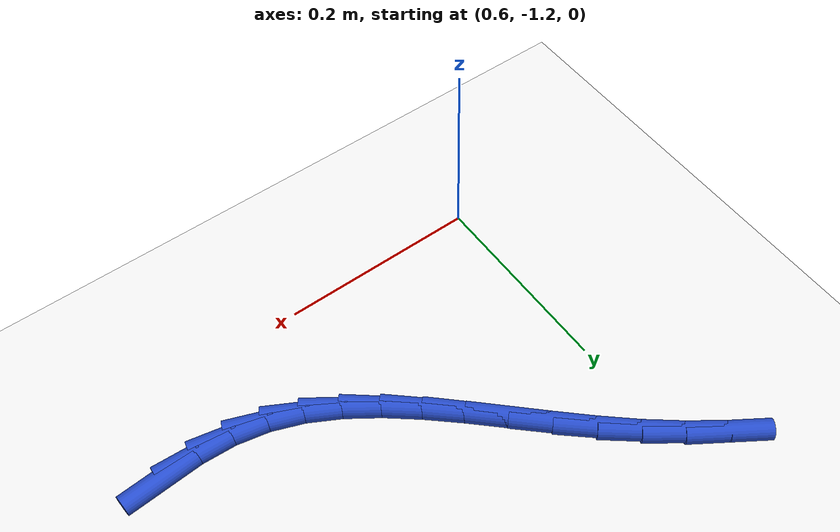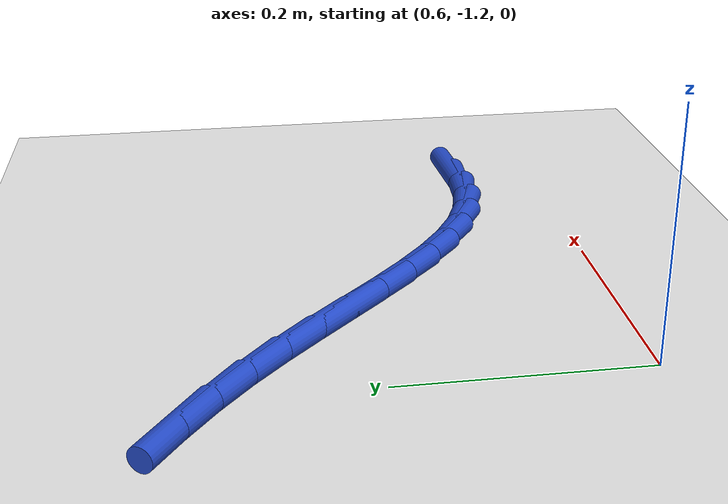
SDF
<sdf version="1.6">
 <world name="default">
  <model name="ground_plane">
   <static>1</static>
   <link name="link">
    <collision name="collision">
     <geometry><plane><normal>0 0 1</normal><size>100 100</size></plane></geometry>
     <surface><friction><ode><mu>100</mu><mu2>50</mu2></ode></friction></surface>
    </collision>
    <visual name="visual">
     <cast_shadows>0</cast_shadows>
     <geometry><plane><normal>0 0 1</normal><size>100 100</size></plane></geometry>
     <material>
      <script><uri>file://media/materials/scripts/gazebo.material</uri><name>Gazebo/WhiteGlow</name></script>
     </material>
    </visual>
   </link>
  </model>
  <model name="line">
   <link name="link_137">
    <pose>0.9863845972514707 -1.1163551998957804 0.01 0 1.57 0.06817874092508286</pose>
    <collision name="collision">
     <geometry><cylinder><radius>0.01</radius><length>0.08</length></cylinder></geometry>
    </collision>
    <visual name="visual">
     <material>
      <script><name>Gazebo/Blue</name><uri>file://media/materials/scripts/gazebo.material</uri></script>
     </material>
     <geometry><cylinder><radius>0.01</radius><length>0.08</length></cylinder></geometry>
    </visual>
   </link>
   <link name="link_138">
    <pose>0.9507456819640829 -1.1187887881528247 0.01 0 1.57 -0.05350136861282676</pose>
    <collision name="collision">
     <geometry><cylinder><radius>0.01</radius><length>0.08</length></cylinder></geometry>
    </collision>
    <visual name="visual">
     <material>
      <script><name>Gazebo/Blue</name><uri>file://media/materials/scripts/gazebo.material</uri></script>
     </material>
     <geometry><cylinder><radius>0.01</radius><length>0.08</length></cylinder></geometry>
    </visual>
   </link>
   <link name="link_139">
    <pose>0.9163078860100441 -1.1169445589630393 0.01 0 1.57 -0.2071813317678104</pose>
    <collision name="collision">
     <geometry><cylinder><radius>0.01</radius><length>0.08</length></cylinder></geometry>
    </collision>
    <visual name="visual">
     <material>
      <script><name>Gazebo/Blue</name><uri>file://media/materials/scripts/gazebo.material</uri></script>
     </material>
     <geometry><cylinder><radius>0.01</radius><length>0.08</length></cylinder></geometry>
    </visual>
   </link>
   <link name="link_140">
    <pose>0.8832534141758946 -1.1099965920705388 0.01 0 1.57 -0.3703180530826858</pose>
    <collision name="collision">
     <geometry><cylinder><radius>0.01</radius><length>0.08</length></cylinder></geometry>
    </collision>
    <visual name="visual">
     <material>
      <script><name>Gazebo/Blue</name><uri>file://media/materials/scripts/gazebo.material</uri></script>
     </material>
     <geometry><cylinder><radius>0.01</radius><length>0.08</length></cylinder></geometry>
    </visual>
   </link>
   <link name="link_141">
    <pose>0.8516038903355424 -1.097709325689524 0.01 0 1.57 -0.5062659006996522</pose>
    <collision name="collision">
     <geometry><cylinder><radius>0.01</radius><length>0.08</length></cylinder></geometry>
    </collision>
    <visual name="visual">
     <material>
      <script><name>Gazebo/Blue</name><uri>file://media/materials/scripts/gazebo.material</uri></script>
     </material>
     <geometry><cylinder><radius>0.01</radius><length>0.08</length></cylinder></geometry>
    </visual>
   </link>
   <link name="link_142">
    <pose>0.8211198769836073 -1.0808069621428187 0.01 0 1.57 -0.610678889927475</pose>
    <collision name="collision">
     <geometry><cylinder><radius>0.01</radius><length>0.08</length></cylinder></geometry>
    </collision>
    <visual name="visual">
     <material>
      <script><name>Gazebo/Blue</name><uri>file://media/materials/scripts/gazebo.material</uri></script>
     </material>
     <geometry><cylinder><radius>0.01</radius><length>0.08</length></cylinder></geometry>
    </visual>
   </link>
   <link name="link_143">
    <pose>0.7915379956717777 -1.0601017200573677 0.01 0 1.57 -0.6860432067550221</pose>
    <collision name="collision">
     <geometry><cylinder><radius>0.01</radius><length>0.08</length></cylinder></geometry>
    </collision>
    <visual name="visual">
     <material>
      <script><name>Gazebo/Blue</name><uri>file://media/materials/scripts/gazebo.material</uri></script>
     </material>
     <geometry><cylinder><radius>0.01</radius><length>0.08</length></cylinder></geometry>
    </visual>
   </link>
   <link name="link_144">
    <pose>0.7625948679517408 -1.0364058180601161 0.01 0 1.57 -0.7359655499409828</pose>
    <collision name="collision">
     <geometry><cylinder><radius>0.01</radius><length>0.08</length></cylinder></geometry>
    </collision>
    <visual name="visual">
     <material>
      <script><name>Gazebo/Blue</name><uri>file://media/materials/scripts/gazebo.material</uri></script>
     </material>
     <geometry><cylinder><radius>0.01</radius><length>0.08</length></cylinder></geometry>
    </visual>
   </link>
   <link name="link_145">
    <pose>0.7340271153751837 -1.010531474778008 0.01 0 1.57 -0.7635834881376015</pose>
    <collision name="collision">
     <geometry><cylinder><radius>0.01</radius><length>0.08</length></cylinder></geometry>
    </collision>
    <visual name="visual">
     <material>
      <script><name>Gazebo/Blue</name><uri>file://media/materials/scripts/gazebo.material</uri></script>
     </material>
     <geometry><cylinder><radius>0.01</radius><length>0.08</length></cylinder></geometry>
    </visual>
   </link>
   <link name="link_146">
    <pose>0.7055713594937945 -0.9832909088379892 0.01 0 1.57 -0.7709923681232863</pose>
    <collision name="collision">
     <geometry><cylinder><radius>0.01</radius><length>0.08</length></cylinder></geometry>
    </collision>
    <visual name="visual">
     <material>
      <script><name>Gazebo/Blue</name><uri>file://media/materials/scripts/gazebo.material</uri></script>
     </material>
     <geometry><cylinder><radius>0.01</radius><length>0.08</length></cylinder></geometry>
    </visual>
   </link>
   <link name="link_147">
    <pose>0.6769642218592596 -0.9554963388670032 0.01 0 1.57 -0.7591384948427752</pose>
    <collision name="collision">
     <geometry><cylinder><radius>0.01</radius><length>0.08</length></cylinder></geometry>
    </collision>
    <visual name="visual">
     <material>
      <script><name>Gazebo/Blue</name><uri>file://media/materials/scripts/gazebo.material</uri></script>
     </material>
     <geometry><cylinder><radius>0.01</radius><length>0.08</length></cylinder></geometry>
    </visual>
   </link>
   <link name="link_148">
    <pose>0.6479423240232668 -0.9279599834919947 0.01 0 1.57 -0.7278802798923846</pose>
    <collision name="collision">
     <geometry><cylinder><radius>0.01</radius><length>0.08</length></cylinder></geometry>
    </collision>
    <visual name="visual">
     <material>
      <script><name>Gazebo/Blue</name><uri>file://media/materials/scripts/gazebo.material</uri></script>
     </material>
     <geometry><cylinder><radius>0.01</radius><length>0.08</length></cylinder></geometry>
    </visual>
   </link>
   <link name="link_149">
    <pose>0.6182422875375047 -0.9014940613399098 0.01 0 1.57 -0.677645254845563</pose>
    <collision name="collision">
     <geometry><cylinder><radius>0.01</radius><length>0.08</length></cylinder></geometry>
    </collision>
    <visual name="visual">
     <material>
      <script><name>Gazebo/Blue</name><uri>file://media/materials/scripts/gazebo.material</uri></script>
     </material>
     <geometry><cylinder><radius>0.01</radius><length>0.08</length></cylinder></geometry>
    </visual>
   </link>
   <link name="link_150">
    <pose>0.5876247815119595 -0.876853883074681 0.01 0 1.57 -0.625229509293735</pose>
    <collision name="collision">
     <geometry><cylinder><radius>0.01</radius><length>0.08</length></cylinder></geometry>
    </collision>
    <visual name="visual">
     <material>
      <script><name>Gazebo/Blue</name><uri>file://media/materials/scripts/gazebo.material</uri></script>
     </material>
     <geometry><cylinder><radius>0.01</radius><length>0.08</length></cylinder></geometry>
    </visual>
   </link>
   <link name="link_151">
    <pose>0.556134330826727 -0.8541230215703015 0.01 0 1.57 -0.5826792567868375</pose>
    <collision name="collision">
     <geometry><cylinder><radius>0.01</radius><length>0.08</length></cylinder></geometry>
    </collision>
    <visual name="visual">
     <material>
      <script><name>Gazebo/Blue</name><uri>file://media/materials/scripts/gazebo.material</uri></script>
     </material>
     <geometry><cylinder><radius>0.01</radius><length>0.08</length></cylinder></geometry>
    </visual>
   </link>
  </model>
 </world>
</sdf>
